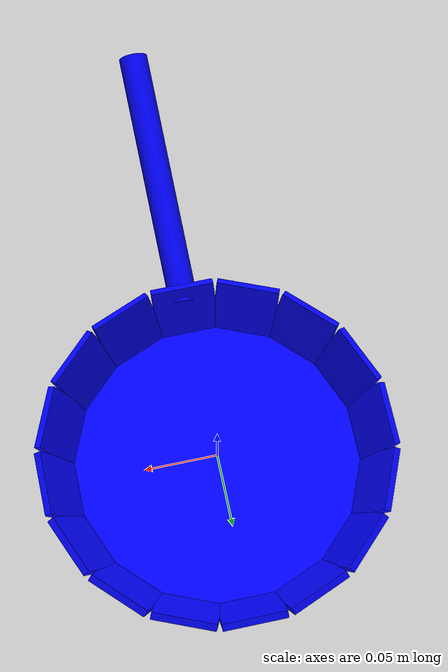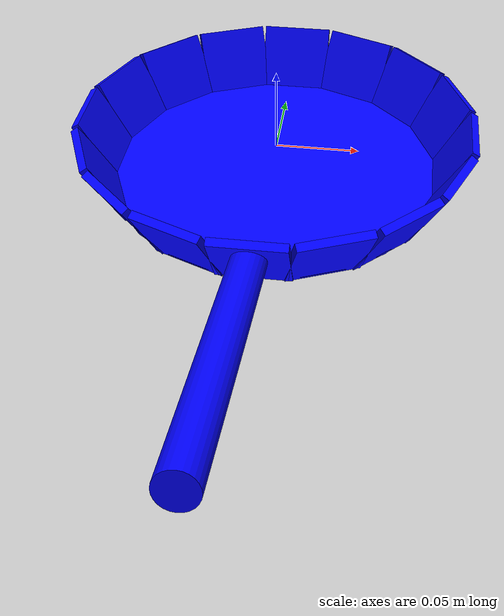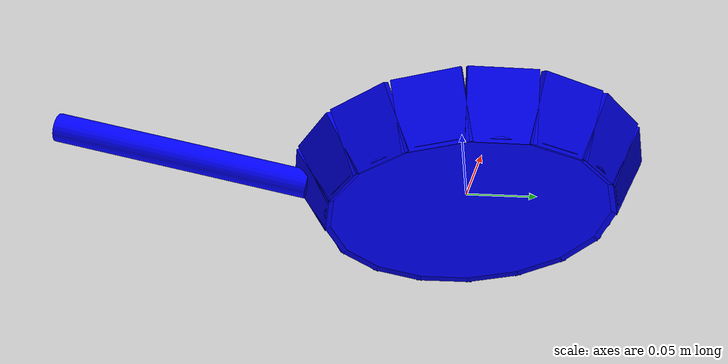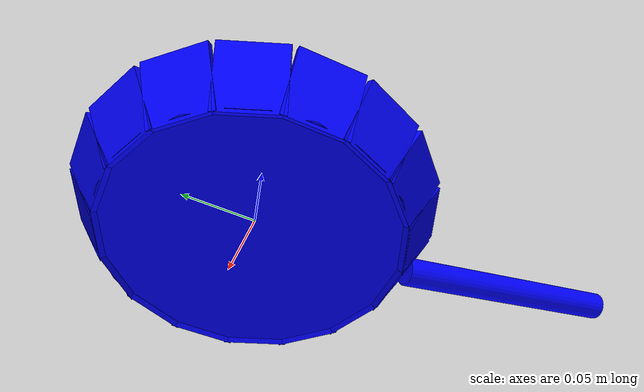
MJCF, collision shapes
<mujoco model="pan">
  <default>
    <default class="visual">
      <geom group="2" type="mesh" contype="0" conaffinity="0"/>
    </default>
    <default class="collision">
      <geom group="3" type="mesh" rgba="0 0 1 1"/>
    </default>
  </default>

  <asset>
    <material name="Material.001" specular="0.5" shininess="0.25" rgba="0.037212 0.037212 0.037212 1.000000"/>
    <material name="Material.002" specular="0.5" shininess="0.0" rgba="0.495375 0.143644 0.066458 1.000000"/>
    <material name="Material.003" specular="0.5" shininess="0.25" rgba="0.800000 0.800000 0.800000 1.000000"/>
    <mesh file="pan_0.obj"/>
    <mesh file="pan_1.obj"/>
    <mesh file="pan_2.obj"/>

  </asset>
  <worldbody>
    <body name="pan">
      <geom mesh="pan_0" material="Material.001" class="visual"/>
      <geom mesh="pan_1" material="Material.003" class="visual"/>
      <geom mesh="pan_2" material="Material.002" class="visual"/>

      <geom type="cylinder" pos="0 -0.2 0.022" size="0.01 0.09" quat="0.77 0.62 0 0" class="collision"/>

      <geom type="cylinder" size="0.1 0.0025" pos="0 0 -0.0175" class="collision"/>

      <body name="hollow_cylinder" pos="0 0 0.01">
        <geom type="box" size="0.0025 0.0218 0.0225" pos="0.1070 0.0000 -0.0112" quat="0.965926 0.000000 0.258819 0.000000" class="collision"/>
        <geom type="box" size="0.0025 0.0218 0.0225" pos="0.0988 0.0409 -0.0112" quat="0.947366 -0.050493 0.253846 0.188443" class="collision"/>
        <geom type="box" size="0.0025 0.0218 0.0225" pos="0.0757 0.0757 -0.0112" quat="0.892399 -0.099046 0.239118 0.369644" class="collision"/>
        <geom type="box" size="0.0025 0.0218 0.0225" pos="0.0409 0.0988 -0.0112" quat="0.803138 -0.143792 0.215200 0.536640" class="collision"/>
        <geom type="box" size="0.0025 0.0218 0.0225" pos="0.0000 0.1070 -0.0112" quat="0.683013 -0.183013 0.183013 0.683013" class="collision"/>
        <geom type="box" size="0.0025 0.0218 0.0225" pos="-0.0409 0.0988 -0.0112" quat="0.536640 -0.215200 0.143792 0.803138" class="collision"/>
        <geom type="box" size="0.0025 0.0218 0.0225" pos="-0.0757 0.0757 -0.0112" quat="0.369644 -0.239118 0.099046 0.892399" class="collision"/>
        <geom type="box" size="0.0025 0.0218 0.0225" pos="-0.0988 0.0409 -0.0112" quat="0.188443 -0.253846 0.050493 0.947366" class="collision"/>
        <geom type="box" size="0.0025 0.0218 0.0225" pos="-0.1070 0.0000 -0.0112" quat="0.000000 -0.258819 0.000000 0.965926" class="collision"/>
        <geom type="box" size="0.0025 0.0218 0.0225" pos="-0.0988 -0.0409 -0.0112" quat="-0.188443 -0.253846 -0.050493 0.947366" class="collision"/>
        <geom type="box" size="0.0025 0.0218 0.0225" pos="-0.0757 -0.0757 -0.0112" quat="-0.369644 -0.239118 -0.099046 0.892399" class="collision"/>
        <geom type="box" size="0.0025 0.0218 0.0225" pos="-0.0409 -0.0988 -0.0112" quat="-0.536640 -0.215200 -0.143792 0.803138" class="collision"/>
        <geom type="box" size="0.0025 0.0218 0.0225" pos="-0.0000 -0.1070 -0.0112" quat="-0.683013 -0.183013 -0.183013 0.683013" class="collision"/>
        <geom type="box" size="0.0025 0.0218 0.0225" pos="0.0409 -0.0988 -0.0112" quat="-0.803138 -0.143792 -0.215200 0.536640" class="collision"/>
        <geom type="box" size="0.0025 0.0218 0.0225" pos="0.0757 -0.0757 -0.0112" quat="-0.892399 -0.099046 -0.239118 0.369644" class="collision"/>
        <geom type="box" size="0.0025 0.0218 0.0225" pos="0.0988 -0.0409 -0.0112" quat="-0.947366 -0.050493 -0.253846 0.188443" class="collision"/>
      </body>

    </body>
  </worldbody>
</mujoco>
